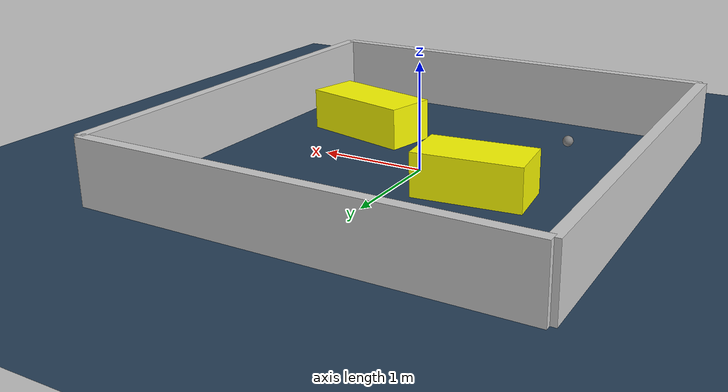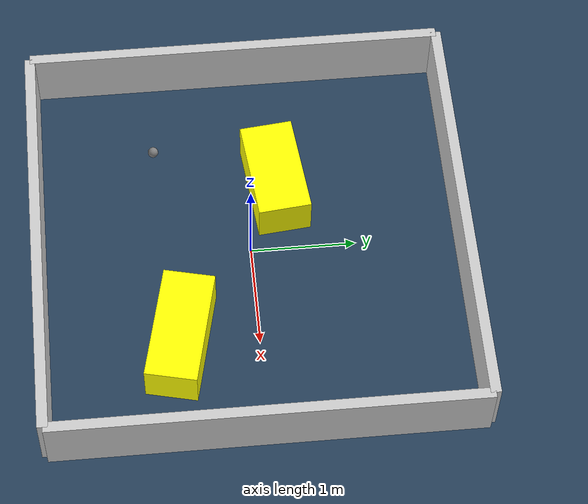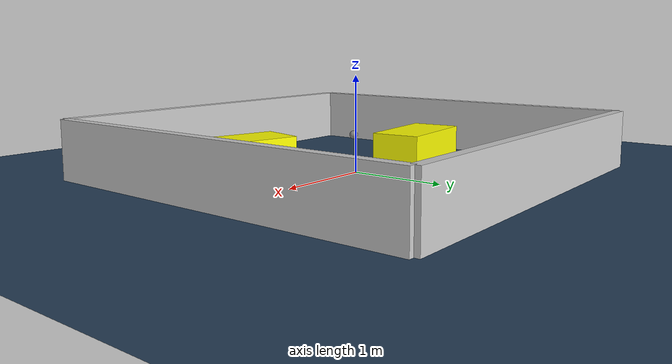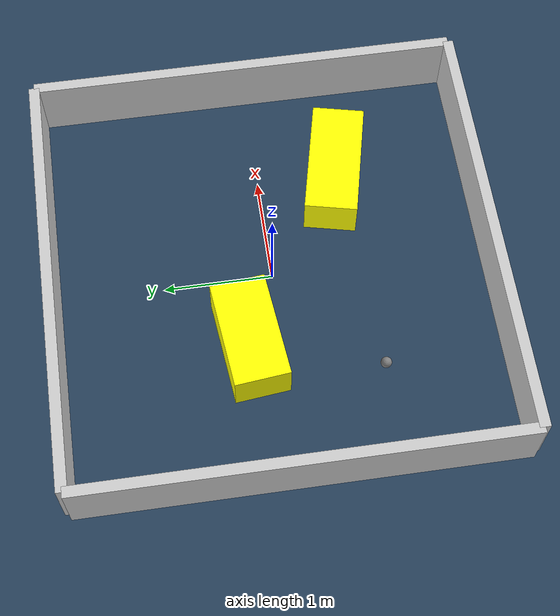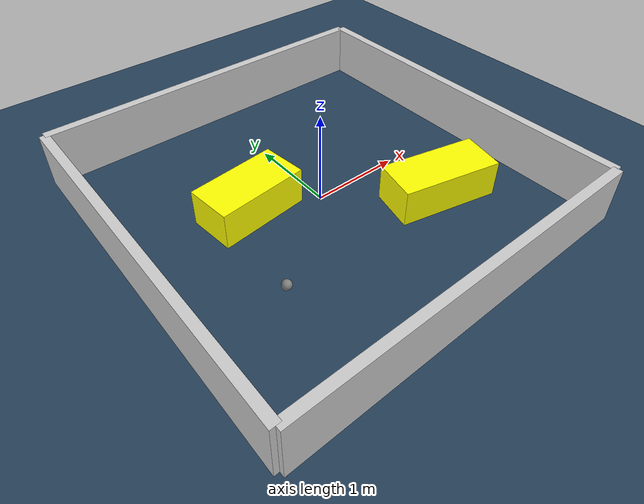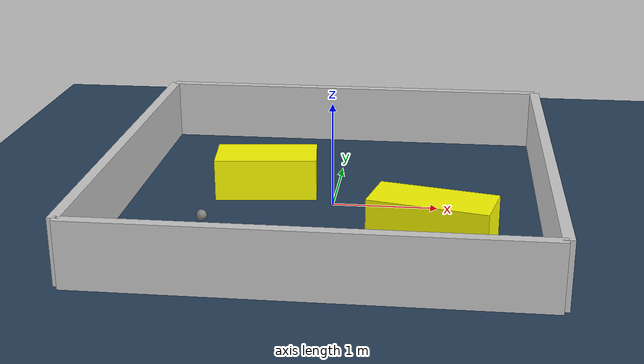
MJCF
<?xml version="1.0" ?>
<mujoco model="generated_environment">
  <option timestep="0.01" integrator="RK4" cone="elliptic"/>
  <default>
    <geom density="1"/>
  </default>
  <asset>
    <texture builtin="gradient" height="3072" rgb1="0.3 0.5 0.7" rgb2="0 0 0" type="skybox" width="512"/>
    <texture builtin="checker" height="300" mark="edge" markrgb="0.8 0.8 0.8" name="groundplane" rgb1="0.2 0.3 0.4" rgb2="0.1 0.2 0.3" type="2d" width="300"/>
    <material name="groundplane" reflectance="0.2" texrepeat="5 5" texture="groundplane" texuniform="true"/>
    <material name="robot" rgba="0.0 1.0 0.0 1"/>
  </asset>
  <worldbody>
    <light dir="0 0 -1" directional="true" pos="0 0 1.5"/>
    <geom condim="4" friction="1.0 0.005 0.001" material="groundplane" name="floor" size="0 0 0.05" type="plane"/>
    <body name="walls">
      <geom name="wall_1" condim="4" pos="-2.0 0.0 0.3" rgba="0.800000011920929 0.800000011920929 0.800000011920929 1.0" size="0.05 2.0 0.3" type="box"/>
      <geom name="wall_2" condim="4" pos="2.0 0.0 0.3" rgba="0.800000011920929 0.800000011920929 0.800000011920929 1.0" size="0.05 2.0 0.3" type="box"/>
      <geom name="wall_3" condim="4" pos="0.0 -2.0 0.3" rgba="0.800000011920929 0.800000011920929 0.800000011920929 1.0" size="2.0 0.05 0.3" type="box"/>
      <geom name="wall_4" condim="4" pos="0.0 2.0 0.3" rgba="0.800000011920929 0.800000011920929 0.800000011920929 1.0" size="2.0 0.05 0.3" type="box"/>
    </body>
    <body name="robot">
      <joint name="joint_x" type="slide" pos="0 0 0" axis="1 0 0"/>
      <joint name="joint_y" type="slide" pos="0 0 0" axis="0 1 0"/>
      <geom name="robot" type="sphere" pos="-1.078614948065019 -0.8624393224162611 0.2" size="0.05" mass="5." friction="1.0 0.005 0.0001" condim="4"/>
      <site name="sensor_ball"/>
    </body>
    <body name="obstacle_1_movable">
      <geom name="obstacle_1_movable" condim="4" pos="0.9640774524455606 -0.730333737372224 0.2" euler="0 0 257.0070333375723" friction="1.0 0.005 0.001" rgba="1 1 0 1" size="0.2431368141135568 0.5473293485250013 0.2" type="box" mass="0.1"/>
      <joint type="free"/>
    </body>
    <body name="obstacle_2_movable">
      <geom name="obstacle_2_movable" condim="4" pos="-0.6814178924786094 0.29374354346375076 0.2" euler="0 0 186.06850450991675" friction="1.0 0.005 0.001" rgba="1 1 0 1" size="0.4893177327319583 0.25224793862210254 0.2" type="box" mass="0.1"/>
      <joint type="free"/>
    </body>
  </worldbody>
  <actuator>
    <motor name="actuator_x" joint="joint_x" gear="1" ctrlrange="-1 1"/>
    <motor name="actuator_y" joint="joint_y" gear="1" ctrlrange="-1 1"/>
  </actuator>
</mujoco>
